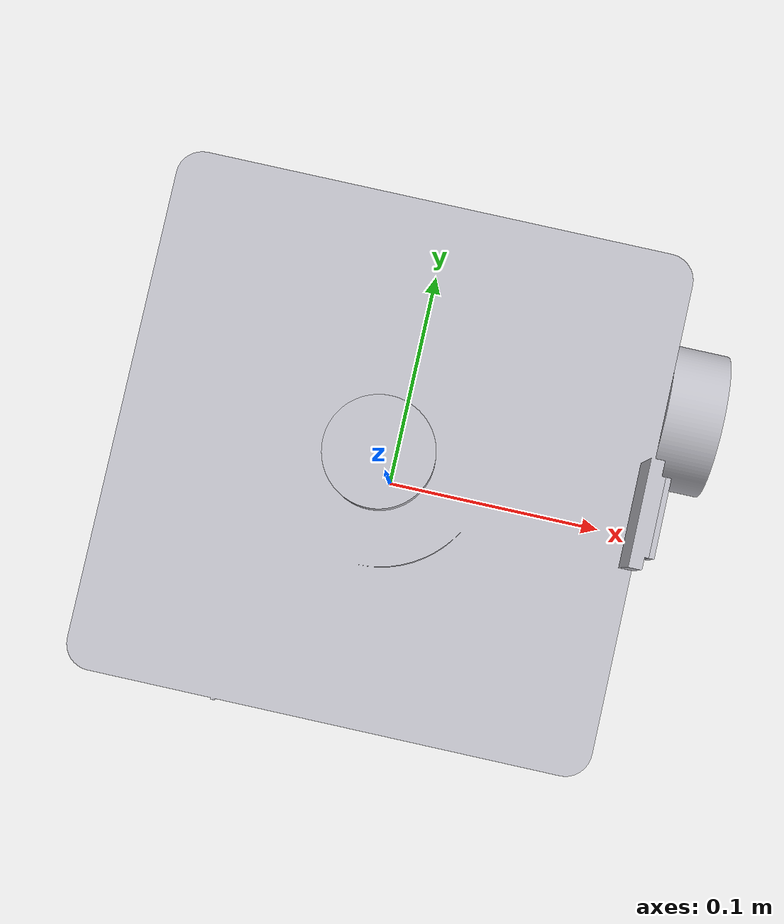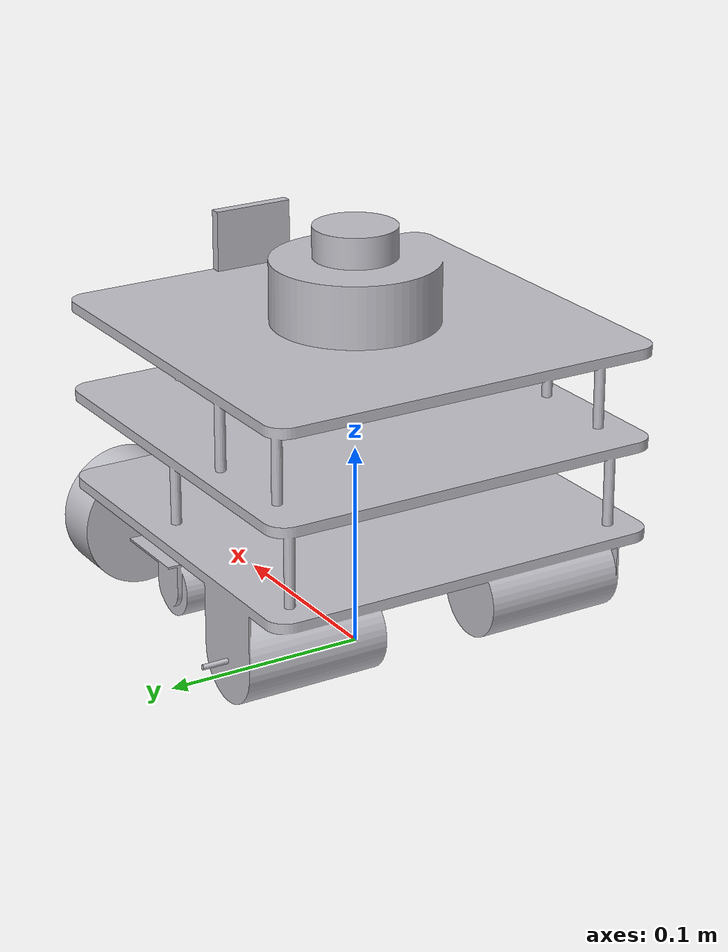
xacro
<?xml version="1.0" ?>
<robot name="bbot_new" xmlns:xacro="http://www.ros.org/wiki/xacro">

<xacro:include filename="$(find bbot_new_description)/urdf/materials.xacro" />
<xacro:include filename="$(find bbot_new_description)/urdf/bbot_new.gazebo" />
<xacro:arg name = "use_ros2_control" default="true"/>
<xacro:arg name = "sim_mode" default="false"/>

<xacro:if value = "$(arg use_ros2_control)">
  <xacro:include filename="$(find bbot_new_description)/urdf/ros2_control.xacro" />
</xacro:if>

<xacro:unless value = "$(arg use_ros2_control)">
  <xacro:include filename="$(find bbot_new_description)/urdf/bbot_diff_drive_plugin.xacro" />
</xacro:unless>

<xacro:include filename="$(find bbot_new_description)/urdf/bbot_new_camera.xacro" />
<xacro:include filename="$(find bbot_new_description)/urdf/bbot_new_lidar.xacro" />

<link name="base_footprint" />

<link name="base_link">
  <inertial>
    <origin xyz="-0.006057605134441126 -0.00018111500705384267 0.10888749093150545" rpy="0 0 0"/>
    <mass value="1.049122069689706"/>
    <inertia ixx="0.006186" iyy="0.006006" izz="0.00631" ixy="-0.0" iyz="0.0" ixz="-0.000632"/>
  </inertial>
  <visual>
    <origin xyz="0 0 0" rpy="0 0 0"/>
    <geometry>
      <mesh filename="file://$(find bbot_new_description)/meshes/base_link.stl" scale="0.001 0.001 0.001"/>
    </geometry>
    <material name="silver"/>
  </visual>
  <collision>
    <origin xyz="0 0 0" rpy="0 0 0"/>
    <geometry>
      <mesh filename="file://$(find bbot_new_description)/meshes/base_link.stl" scale="0.001 0.001 0.001"/>
    </geometry>
  </collision>
</link>

<link name="lidar">
  <inertial>
    <origin xyz="-3.6197078243972464e-07 -1.1500705524792785e-07 0.007500311251273456" rpy="0 0 0"/>
    <mass value="0.02686061718819272"/>
    <inertia ixx="3e-06" iyy="3e-06" izz="5e-06" ixy="-0.0" iyz="0.0" ixz="0.0"/>
  </inertial>
  <visual>
    <origin xyz="-0.000257 0.000181 -0.193407" rpy="0 0 0"/>
    <geometry>
      <mesh filename="file://$(find bbot_new_description)/meshes/lidar_1.stl" scale="0.001 0.001 0.001"/>
    </geometry>
    <material name="silver"/>
  </visual>
  <collision>
    <origin xyz="-0.000257 0.000181 -0.193407" rpy="0 0 0"/>
    <geometry>
      <mesh filename="file://$(find bbot_new_description)/meshes/lidar_1.stl" scale="0.001 0.001 0.001"/>
    </geometry>
  </collision>
</link>

<link name="camera">
  <inertial>
    <origin xyz="0.0009996380292177226 -1.150070553431208e-07 3.138589770024236e-07" rpy="0 0 0"/>
    <mass value="0.0017100000509619655"/>
    <inertia ixx="0.0" iyy="0.0" izz="0.0" ixy="-0.0" iyz="0.0" ixz="0.0"/>
  </inertial>
  <visual>
    <origin xyz="-0.102757 0.000181 -0.175407" rpy="0 0 0"/>
    <geometry>
      <mesh filename="file://$(find bbot_new_description)/meshes/camera_1.stl" scale="0.001 0.001 0.001"/>
    </geometry>
    <material name="silver"/>
  </visual>
  <collision>
    <origin xyz="-0.102757 0.000181 -0.175407" rpy="0 0 0"/>
    <geometry>
      <mesh filename="file://$(find bbot_new_description)/meshes/camera_1.stl" scale="0.001 0.001 0.001"/>
    </geometry>
  </collision>
</link>

<link name="camera_optical_link"/>

<link name="rightwheel">
  <inertial>
    <origin xyz="-3.6279034571623514e-07 -0.012500115007057472 3.1181752010306374e-07" rpy="0 0 0"/>
    <mass value="0.11821469543761899"/>
    <inertia ixx="3.7e-05" iyy="6.2e-05" izz="3.7e-05" ixy="-0.0" iyz="0.0" ixz="-0.0"/>
  </inertial>
  <visual>
    <origin xyz="0.054743 0.112681 -0.038407" rpy="0 0 0"/>
    <geometry>
      <mesh filename="file://$(find bbot_new_description)/meshes/rightwheel_1.stl" scale="0.001 0.001 0.001"/>
    </geometry>
    <material name="silver"/>
  </visual>
  <collision>
    <origin xyz="0.054743 0.112681 -0.038407" rpy="0 0 0"/>
    <geometry>
      <mesh filename="file://$(find bbot_new_description)/meshes/rightwheel_1.stl" scale="0.001 0.001 0.001"/>
    </geometry>
  </collision>
</link>

<link name="leftwheel">
  <inertial>
    <origin xyz="-3.627903472150362e-07 0.012499884992944452 3.118175187846739e-07" rpy="0 0 0"/>
    <mass value="0.11821469543761903"/>
    <inertia ixx="3.7e-05" iyy="6.2e-05" izz="3.7e-05" ixy="-0.0" iyz="-0.0" ixz="0.0"/>
  </inertial>
  <visual>
    <origin xyz="0.054743 -0.112319 -0.038407" rpy="0 0 0"/>
    <geometry>
      <mesh filename="file://$(find bbot_new_description)/meshes/leftwheel_1.stl" scale="0.001 0.001 0.001"/>
    </geometry>
    <material name="silver"/>
  </visual>
  <collision>
    <origin xyz="0.054743 -0.112319 -0.038407" rpy="0 0 0"/>
    <geometry>
      <mesh filename="file://$(find bbot_new_description)/meshes/leftwheel_1.stl" scale="0.001 0.001 0.001"/>
    </geometry>
  </collision>
</link>

<joint name="base_basefootprint_joint" type="fixed">
  <origin xyz="0 0 0" rpy="0 0 0"/>
  <parent link="base_link"/>
  <child link="base_footprint"/>
</joint>

<joint name="base_lidar_joint" type="fixed">
  <origin xyz="0.000257 -0.000181 0.194407" rpy="0 0 0"/>
  <parent link="base_link"/>
  <child link="lidar"/>
</joint>

<joint name="base_camera_joint" type="fixed">
  <origin xyz="0.102757 -0.000181 0.175407" rpy="0 0 0"/>
  <parent link="base_link"/>
  <child link="camera"/>
</joint>

<joint name="camera_cameraoptical_joint" type="fixed">
  <parent link="camera"/>
  <child link="camera_optical_link"/>
  <origin xyz="0 0 0" rpy="${-pi/2} 0 ${-pi/2}" />
</joint>

<joint name="base_rightwheel_joint" type="continuous">
  <origin xyz="-0.054743 -0.112681 0.038407" rpy="0 0 0"/>
  <parent link="base_link"/>
  <child link="rightwheel"/>
  <axis xyz="0 1 0"/>
</joint>

<joint name="base_leftwheel_joint" type="continuous">
  <origin xyz="-0.054743 0.112319 0.038407" rpy="0 0 0"/>
  <parent link="base_link"/>
  <child link="leftwheel"/>
  <axis xyz="0 1 0"/>
</joint>

</robot>
